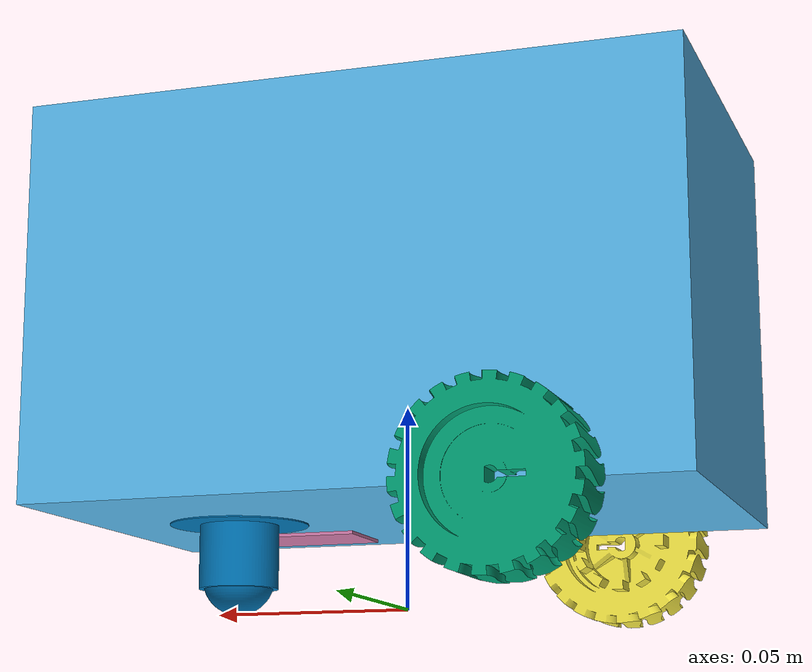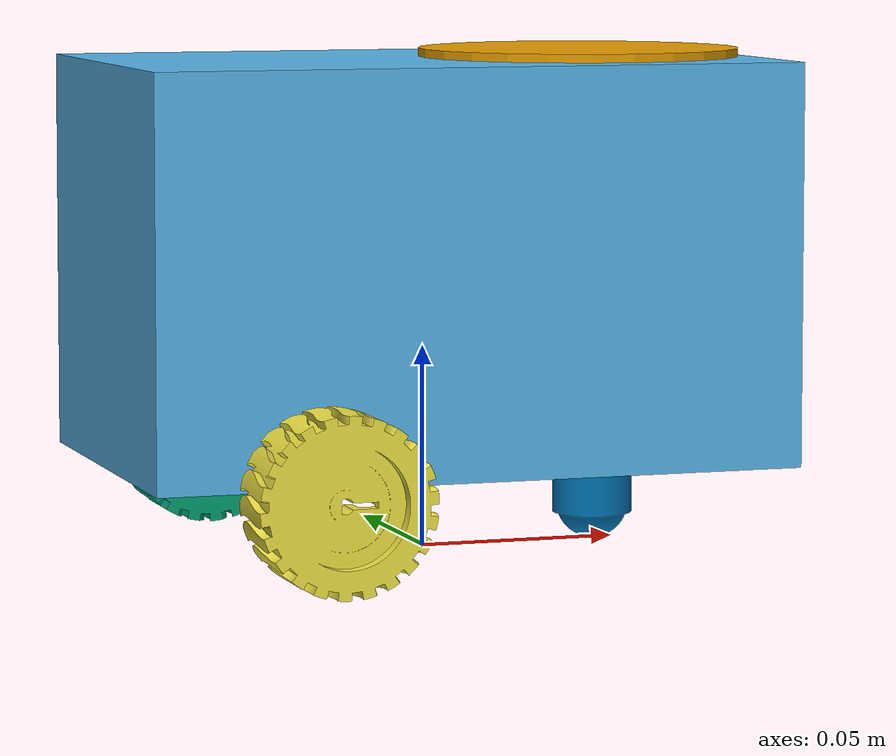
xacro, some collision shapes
<?xml version="1.0"?>
<robot name="tinycar" xmlns:xacro="http://ros.org/wiki/xacro">
     <!--Gazebo and ros2 control plugins-->
  <xacro:include filename="$(find tinycar_description)/urdf/controllers/tinycar.ros2_control.xacro"/>
  <xacro:include filename="$(find tinycar_description)/urdf/controllers/tinycar.gazebo.xacro"/>

<xacro:include filename="$(find tinycar_description)/urdf/sensors/tinycar.sensors.xacro"/>

    <link name="base_footprint" />

    <link name="base_link">
    <visual>
        <origin xyz="0 0 0" rpy="0 0 0"/>
        <geometry>
            <mesh filename="package://tinycar_description/meshes/base_link.stl"
                  scale="0.001 0.001 0.001" />
        </geometry>
    </visual>

    <collision>
        <origin xyz="0 0 0.02061" rpy="0 0 0"/>
        <geometry>
            <box size="0.16149 0.10 0.0986" />
        </geometry>
    </collision>

    <inertial>
        <mass value="2.768772"/>
        <origin xyz="-0.02 0 0.00561" rpy="0 0 0"/>
        <inertia
            ixx="0.00455"
            iyy="0.00826"
            izz="0.00833"
            ixy="0.0"
            ixz="0.0"
            iyz="0.0"/>
        </inertial>
    </link>
    <link name="left_wheel">
        <visual>
            <origin xyz="0 0 0" rpy="0 0 0" />
            <geometry>
                <mesh filename="package://tinycar_description/meshes/wheel.stl"
                      scale="0.001 0.001 0.001"/>
            </geometry>
        </visual>

        <collision>
            <origin xyz="0 -0.01 0" rpy="1.57 0 0" />
            <geometry>
                <cylinder length="0.02" radius="0.0225" />
            </geometry>
        </collision>

         <inertial>
            <mass value="0.017054"/>
            <origin xyz="0 0 0" rpy="0 0 0"/>
            <inertia
                ixx="0.00000273"
                iyy="0.00000432"
                izz="0.00000273"
                ixy="0.0"
                ixz="0.0"
                iyz="0.0"/>
    </inertial>
    </link>

    <link name="right_wheel">
        <visual>
            <origin xyz="0 0 0" rpy="0 0 3.14" />
            <geometry>
                <mesh filename="package://tinycar_description/meshes/wheel.stl"
                      scale="0.001 0.001 0.001"/>
            </geometry>
        </visual>

        <collision>
            <origin xyz="0 0.01 0" rpy="1.57 0 0" />
            <geometry>
                <cylinder length="0.02" radius="0.0225" />
            </geometry>
        </collision>

      <inertial>
        <mass value="0.017054"/>
        <origin xyz="0 0 0" rpy="0 0 0"/>
        <inertia
            ixx="0.00000273"
            iyy="0.00000432"
            izz="0.00000273"
            ixy="0.0"
            ixz="0.0"
            iyz="0.0"/>
    </inertial>
    </link>

    <link name="caster_wheel">
        <visual>
            <origin xyz="0 0 0" rpy="0 0 0" />
            <geometry>
                <mesh filename="package://tinycar_description/meshes/caster_wheel.stl"
                      scale="0.001 0.001 0.001"/>
            </geometry>
        </visual>

        <collision>
            <origin xyz="0 0 0" rpy="0 0 0" />
            <geometry>
                <sphere radius="0.025"/>
            </geometry>
        </collision>

    <inertial>
    <mass value="0.009834"/>
    <origin xyz="0 0 -0.005" rpy="0 0 0"/>
    <inertia
        ixx="0.00000246"
        iyy="0.00000246"
        izz="0.00000246"
        ixy="0.0"
        ixz="0.0"
        iyz="0.0"/>
</inertial>
    </link>

    <joint name="virtual_joint" type="fixed">
        <parent link="base_footprint"/>
        <child link="base_link" />
        <origin xyz="0 0 0.05148" rpy="0 0 0"/>
    </joint>

    <joint name="left_wheel_joint" type="continuous">
        <parent link="base_link"/>
        <child link="left_wheel"/>
        <origin xyz="-0.04026 0.071 -0.03" rpy="0 0 0" />
        <axis xyz="0 1 0"/>
    </joint>

    <joint name="right_wheel_joint" type="continuous">
        <parent link="base_link"/>
        <child link="right_wheel"/>
        <origin xyz="-0.04026 -0.071 -0.03" rpy="0 0 0" />
        <axis xyz="0 1 0"/>
    </joint>

    <joint name="base_caster_wheel_joint" type="fixed">
        <parent link="base_link"/>
        <child link="caster_wheel"/>
        <origin xyz="0.045 0.0 -0.0265" rpy="0 0 0" />
    </joint>
    <xacro:agribot_sensors/>

</robot>

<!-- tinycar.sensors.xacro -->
<robot xmlns:xacro="http://ros.org/wiki/xacro">

  <!-- Adds canonical sensor frames attached to base_link -->
  <xacro:macro name="agribot_sensors" params="">

    <!-- ================= IMU ================= -->
    <!-- Canonical IMU frame -->
    <link name="imu_link"/>
    <joint name="imu_joint" type="fixed">
      <!-- Put the IMU where it physically sits on the robot.
           Example values only. Replace with your measured mounting position. -->
      <origin xyz="0.0369 -0.03 -0.0245" rpy="0 0 0"/>
      <parent link="base_link"/>
      <child link="imu_link"/>
    </joint>

    <!-- Optional: a simple visual/collision so you can see it in RViz/Gazebo -->
    <link name="imu_link_visual">
      <visual>
        <origin xyz="0 0 0" rpy="0 0 0"/>
        <geometry><box size="0.03 0.02 0.01"/></geometry>
      </visual>
      <collision>
        <origin xyz="0 0 0" rpy="0 0 0"/>
        <geometry><box size="0.03 0.02 0.01"/></geometry>
      </collision>
      <inertial>
        <origin xyz="0 0 0" rpy="0 0 0"/>
        <mass value="0.02"/>
        <inertia ixx="1e-6" iyy="1e-6" izz="1e-6" ixy="0" ixz="0" iyz="0"/>
      </inertial>
    </link>
    <joint name="imu_visual_joint" type="fixed">
      <origin xyz="0 0 0" rpy="0 0 0"/>
      <parent link="imu_link"/>
      <child link="imu_link_visual"/>
    </joint>
     <!-- ================= LiDAR ================= -->
    <!-- Nav2 convention is usually base_laser -->
    <link name="base_laser"/>
    <joint name="base_laser_joint" type="fixed">
      <!-- Example: center-front, slightly up -->
      <origin xyz="0.0408 0.0  0.062" rpy="0 0 0"/>
      <parent link="base_link"/>
      <child link="base_laser"/>
    </joint>

    <!-- Optional visual -->
    <link name="lidar_visual">
      <visual>
        <geometry><cylinder radius="0.04" length="0.02"/></geometry>
      </visual>
      <collision>
        <geometry><cylinder radius="0.04" length="0.02"/></geometry>
      </collision>
      <inertial>
        <mass value="0.02"/>
        <inertia ixx="1e-5" iyy="1e-5" izz="1e-5" ixy="0" ixz="0" iyz="0"/>
      </inertial>
    </link>
    <joint name="lidar_visual_joint" type="fixed">
      <origin xyz="0 0 0.0" rpy="0 0 0"/>
      <parent link="base_laser"/>
      <child link="lidar_visual"/>
    </joint>

  </xacro:macro>

</robot>
